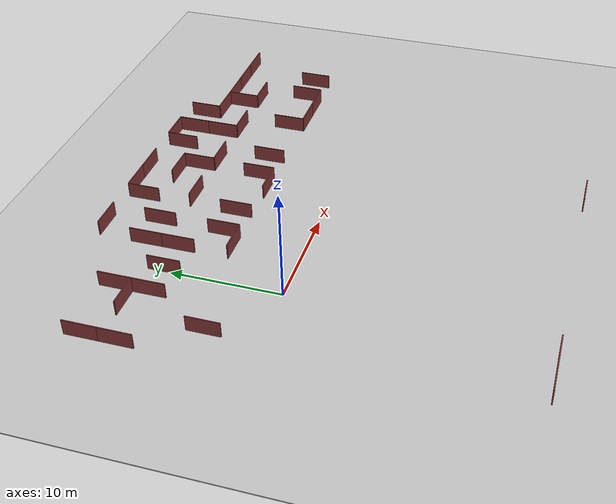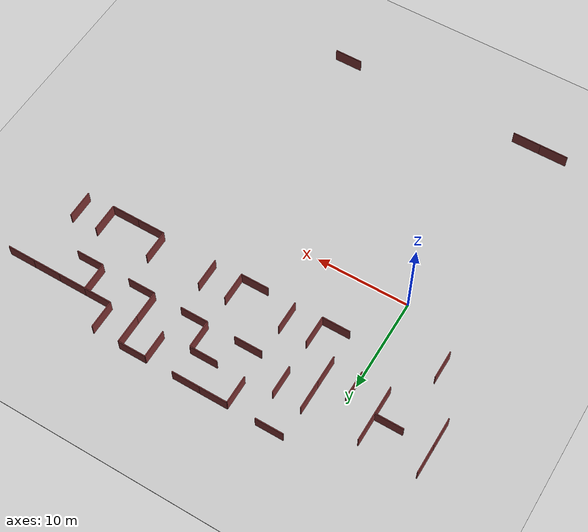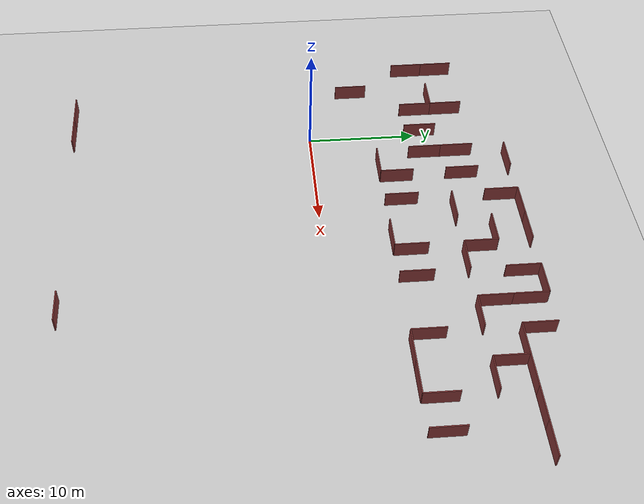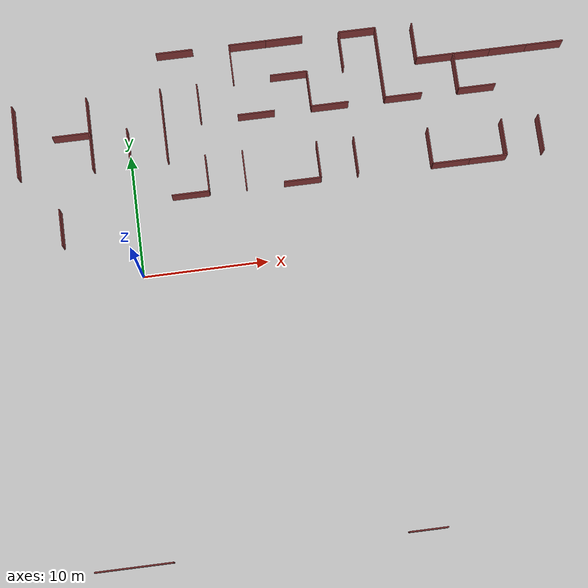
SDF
<sdf version="1.7">
 <world name="maze_world">
  <model name="ground">
   <static>true</static>
   <link name="ground_link">
    <collision name="collision"><geometry><box><size>150 150 0.1</size></box></geometry></collision>
    <visual name="visual">
     <geometry><box><size>150 150 0.1</size></box></geometry>
     <material><diffuse>0.8 0.8 0.8 1</diffuse></material>
    </visual>
   </link>
  </model>
  <model name="wall_w_69">
   <static>true</static>
   <pose>-6.0 4.5 0.75 0 0 1.5708</pose>
   <link name="link">
    <collision name="collision"><geometry><box><size>3 0.1 1.5</size></box></geometry></collision>
    <visual name="visual">
     <geometry><box><size>3 0.1 1.5</size></box></geometry>
     <material><diffuse>0.5 0.2 0.2 1</diffuse></material>
    </visual>
   </link>
  </model>
  <model name="wall_n_86">
   <static>true</static>
   <pose>4.5 6.0 0.75 0 0 0</pose>
   <link name="link">
    <collision name="collision"><geometry><box><size>3 0.1 1.5</size></box></geometry></collision>
    <visual name="visual">
     <geometry><box><size>3 0.1 1.5</size></box></geometry>
     <material><diffuse>0.5 0.2 0.2 1</diffuse></material>
    </visual>
   </link>
  </model>
  <model name="wall_w_87">
   <static>true</static>
   <pose>6.0 7.5 0.75 0 0 1.5708</pose>
   <link name="link">
    <collision name="collision"><geometry><box><size>3 0.1 1.5</size></box></geometry></collision>
    <visual name="visual">
     <geometry><box><size>3 0.1 1.5</size></box></geometry>
     <material><diffuse>0.5 0.2 0.2 1</diffuse></material>
    </visual>
   </link>
  </model>
  <model name="wall_w_88">
   <static>true</static>
   <pose>9.0 7.5 0.75 0 0 1.5708</pose>
   <link name="link">
    <collision name="collision"><geometry><box><size>3 0.1 1.5</size></box></geometry></collision>
    <visual name="visual">
     <geometry><box><size>3 0.1 1.5</size></box></geometry>
     <material><diffuse>0.5 0.2 0.2 1</diffuse></material>
    </visual>
   </link>
  </model>
  <model name="wall_n_89">
   <static>true</static>
   <pose>13.5 6.0 0.75 0 0 0</pose>
   <link name="link">
    <collision name="collision"><geometry><box><size>3 0.1 1.5</size></box></geometry></collision>
    <visual name="visual">
     <geometry><box><size>3 0.1 1.5</size></box></geometry>
     <material><diffuse>0.5 0.2 0.2 1</diffuse></material>
    </visual>
   </link>
  </model>
  <model name="wall_w_90">
   <static>true</static>
   <pose>15.0 7.5 0.75 0 0 1.5708</pose>
   <link name="link">
    <collision name="collision"><geometry><box><size>3 0.1 1.5</size></box></geometry></collision>
    <visual name="visual">
     <geometry><box><size>3 0.1 1.5</size></box></geometry>
     <material><diffuse>0.5 0.2 0.2 1</diffuse></material>
    </visual>
   </link>
  </model>
  <model name="wall_w_91">
   <static>true</static>
   <pose>18.0 7.5 0.75 0 0 1.5708</pose>
   <link name="link">
    <collision name="collision"><geometry><box><size>3 0.1 1.5</size></box></geometry></collision>
    <visual name="visual">
     <geometry><box><size>3 0.1 1.5</size></box></geometry>
     <material><diffuse>0.5 0.2 0.2 1</diffuse></material>
    </visual>
   </link>
  </model>
  <model name="wall_n_92">
   <static>true</static>
   <pose>25.5 6.0 0.75 0 0 0</pose>
   <link name="link">
    <collision name="collision"><geometry><box><size>3 0.1 1.5</size></box></geometry></collision>
    <visual name="visual">
     <geometry><box><size>3 0.1 1.5</size></box></geometry>
     <material><diffuse>0.5 0.2 0.2 1</diffuse></material>
    </visual>
   </link>
  </model>
  <model name="wall_w_93">
   <static>true</static>
   <pose>24.0 7.5 0.75 0 0 1.5708</pose>
   <link name="link">
    <collision name="collision"><geometry><box><size>3 0.1 1.5</size></box></geometry></collision>
    <visual name="visual">
     <geometry><box><size>3 0.1 1.5</size></box></geometry>
     <material><diffuse>0.5 0.2 0.2 1</diffuse></material>
    </visual>
   </link>
  </model>
  <model name="wall_n_94">
   <static>true</static>
   <pose>28.5 6.0 0.75 0 0 0</pose>
   <link name="link">
    <collision name="collision"><geometry><box><size>3 0.1 1.5</size></box></geometry></collision>
    <visual name="visual">
     <geometry><box><size>3 0.1 1.5</size></box></geometry>
     <material><diffuse>0.5 0.2 0.2 1</diffuse></material>
    </visual>
   </link>
  </model>
  <model name="wall_w_95">
   <static>true</static>
   <pose>30.0 7.5 0.75 0 0 1.5708</pose>
   <link name="link">
    <collision name="collision"><geometry><box><size>3 0.1 1.5</size></box></geometry></collision>
    <visual name="visual">
     <geometry><box><size>3 0.1 1.5</size></box></geometry>
     <material><diffuse>0.5 0.2 0.2 1</diffuse></material>
    </visual>
   </link>
  </model>
  <model name="wall_w_96">
   <static>true</static>
   <pose>33.0 7.5 0.75 0 0 1.5708</pose>
   <link name="link">
    <collision name="collision"><geometry><box><size>3 0.1 1.5</size></box></geometry></collision>
    <visual name="visual">
     <geometry><box><size>3 0.1 1.5</size></box></geometry>
     <material><diffuse>0.5 0.2 0.2 1</diffuse></material>
    </visual>
   </link>
  </model>
  <model name="wall_w_97">
   <static>true</static>
   <pose>-9.0 10.5 0.75 0 0 1.5708</pose>
   <link name="link">
    <collision name="collision"><geometry><box><size>3 0.1 1.5</size></box></geometry></collision>
    <visual name="visual">
     <geometry><box><size>3 0.1 1.5</size></box></geometry>
     <material><diffuse>0.5 0.2 0.2 1</diffuse></material>
    </visual>
   </link>
  </model>
  <model name="wall_w_98">
   <static>true</static>
   <pose>-3.0 10.5 0.75 0 0 1.5708</pose>
   <link name="link">
    <collision name="collision"><geometry><box><size>3 0.1 1.5</size></box></geometry></collision>
    <visual name="visual">
     <geometry><box><size>3 0.1 1.5</size></box></geometry>
     <material><diffuse>0.5 0.2 0.2 1</diffuse></material>
    </visual>
   </link>
  </model>
  <model name="wall_w_99">
   <static>true</static>
   <pose>0.0 10.5 0.75 0 0 1.5708</pose>
   <link name="link">
    <collision name="collision"><geometry><box><size>3 0.1 1.5</size></box></geometry></collision>
    <visual name="visual">
     <geometry><box><size>3 0.1 1.5</size></box></geometry>
     <material><diffuse>0.5 0.2 0.2 1</diffuse></material>
    </visual>
   </link>
  </model>
  <model name="wall_w_100">
   <static>true</static>
   <pose>3.0 10.5 0.75 0 0 1.5708</pose>
   <link name="link">
    <collision name="collision"><geometry><box><size>3 0.1 1.5</size></box></geometry></collision>
    <visual name="visual">
     <geometry><box><size>3 0.1 1.5</size></box></geometry>
     <material><diffuse>0.5 0.2 0.2 1</diffuse></material>
    </visual>
   </link>
  </model>
  <model name="wall_w_113">
   <static>true</static>
   <pose>-9.0 13.5 0.75 0 0 1.5708</pose>
   <link name="link">
    <collision name="collision"><geometry><box><size>3 0.1 1.5</size></box></geometry></collision>
    <visual name="visual">
     <geometry><box><size>3 0.1 1.5</size></box></geometry>
     <material><diffuse>0.5 0.2 0.2 1</diffuse></material>
    </visual>
   </link>
  </model>
  <model name="wall_n_114">
   <static>true</static>
   <pose>-4.5 12.0 0.75 0 0 0</pose>
   <link name="link">
    <collision name="collision"><geometry><box><size>3 0.1 1.5</size></box></geometry></collision>
    <visual name="visual">
     <geometry><box><size>3 0.1 1.5</size></box></geometry>
     <material><diffuse>0.5 0.2 0.2 1</diffuse></material>
    </visual>
   </link>
  </model>
  <model name="wall_w_115">
   <static>true</static>
   <pose>-3.0 13.5 0.75 0 0 1.5708</pose>
   <link name="link">
    <collision name="collision"><geometry><box><size>3 0.1 1.5</size></box></geometry></collision>
    <visual name="visual">
     <geometry><box><size>3 0.1 1.5</size></box></geometry>
     <material><diffuse>0.5 0.2 0.2 1</diffuse></material>
    </visual>
   </link>
  </model>
  <model name="wall_w_116">
   <static>true</static>
   <pose>3.0 13.5 0.75 0 0 1.5708</pose>
   <link name="link">
    <collision name="collision"><geometry><box><size>3 0.1 1.5</size></box></geometry></collision>
    <visual name="visual">
     <geometry><box><size>3 0.1 1.5</size></box></geometry>
     <material><diffuse>0.5 0.2 0.2 1</diffuse></material>
    </visual>
   </link>
  </model>
  <model name="wall_w_117">
   <static>true</static>
   <pose>6.0 13.5 0.75 0 0 1.5708</pose>
   <link name="link">
    <collision name="collision"><geometry><box><size>3 0.1 1.5</size></box></geometry></collision>
    <visual name="visual">
     <geometry><box><size>3 0.1 1.5</size></box></geometry>
     <material><diffuse>0.5 0.2 0.2 1</diffuse></material>
    </visual>
   </link>
  </model>
  <model name="wall_n_118">
   <static>true</static>
   <pose>10.5 12.0 0.75 0 0 0</pose>
   <link name="link">
    <collision name="collision"><geometry><box><size>3 0.1 1.5</size></box></geometry></collision>
    <visual name="visual">
     <geometry><box><size>3 0.1 1.5</size></box></geometry>
     <material><diffuse>0.5 0.2 0.2 1</diffuse></material>
    </visual>
   </link>
  </model>
  <model name="wall_n_119">
   <static>true</static>
   <pose>16.5 12.0 0.75 0 0 0</pose>
   <link name="link">
    <collision name="collision"><geometry><box><size>3 0.1 1.5</size></box></geometry></collision>
    <visual name="visual">
     <geometry><box><size>3 0.1 1.5</size></box></geometry>
     <material><diffuse>0.5 0.2 0.2 1</diffuse></material>
    </visual>
   </link>
  </model>
  <model name="wall_w_120">
   <static>true</static>
   <pose>15.0 13.5 0.75 0 0 1.5708</pose>
   <link name="link">
    <collision name="collision"><geometry><box><size>3 0.1 1.5</size></box></geometry></collision>
    <visual name="visual">
     <geometry><box><size>3 0.1 1.5</size></box></geometry>
     <material><diffuse>0.5 0.2 0.2 1</diffuse></material>
    </visual>
   </link>
  </model>
  <model name="wall_n_121">
   <static>true</static>
   <pose>22.5 12.0 0.75 0 0 0</pose>
   <link name="link">
    <collision name="collision"><geometry><box><size>3 0.1 1.5</size></box></geometry></collision>
    <visual name="visual">
     <geometry><box><size>3 0.1 1.5</size></box></geometry>
     <material><diffuse>0.5 0.2 0.2 1</diffuse></material>
    </visual>
   </link>
  </model>
  <model name="wall_w_122">
   <static>true</static>
   <pose>21.0 13.5 0.75 0 0 1.5708</pose>
   <link name="link">
    <collision name="collision"><geometry><box><size>3 0.1 1.5</size></box></geometry></collision>
    <visual name="visual">
     <geometry><box><size>3 0.1 1.5</size></box></geometry>
     <material><diffuse>0.5 0.2 0.2 1</diffuse></material>
    </visual>
   </link>
  </model>
  <model name="wall_n_123">
   <static>true</static>
   <pose>28.5 12.0 0.75 0 0 0</pose>
   <link name="link">
    <collision name="collision"><geometry><box><size>3 0.1 1.5</size></box></geometry></collision>
    <visual name="visual">
     <geometry><box><size>3 0.1 1.5</size></box></geometry>
     <material><diffuse>0.5 0.2 0.2 1</diffuse></material>
    </visual>
   </link>
  </model>
  <model name="wall_w_124">
   <static>true</static>
   <pose>27.0 13.5 0.75 0 0 1.5708</pose>
   <link name="link">
    <collision name="collision"><geometry><box><size>3 0.1 1.5</size></box></geometry></collision>
    <visual name="visual">
     <geometry><box><size>3 0.1 1.5</size></box></geometry>
     <material><diffuse>0.5 0.2 0.2 1</diffuse></material>
    </visual>
   </link>
  </model>
  <model name="wall_w_132">
   <static>true</static>
   <pose>9.0 16.5 0.75 0 0 1.5708</pose>
   <link name="link">
    <collision name="collision"><geometry><box><size>3 0.1 1.5</size></box></geometry></collision>
    <visual name="visual">
     <geometry><box><size>3 0.1 1.5</size></box></geometry>
     <material><diffuse>0.5 0.2 0.2 1</diffuse></material>
    </visual>
   </link>
  </model>
  <model name="wall_n_133">
   <static>true</static>
   <pose>13.5 15.0 0.75 0 0 0</pose>
   <link name="link">
    <collision name="collision"><geometry><box><size>3 0.1 1.5</size></box></geometry></collision>
    <visual name="visual">
     <geometry><box><size>3 0.1 1.5</size></box></geometry>
     <material><diffuse>0.5 0.2 0.2 1</diffuse></material>
    </visual>
   </link>
  </model>
  <model name="wall_w_134">
   <static>true</static>
   <pose>18.0 16.5 0.75 0 0 1.5708</pose>
   <link name="link">
    <collision name="collision"><geometry><box><size>3 0.1 1.5</size></box></geometry></collision>
    <visual name="visual">
     <geometry><box><size>3 0.1 1.5</size></box></geometry>
     <material><diffuse>0.5 0.2 0.2 1</diffuse></material>
    </visual>
   </link>
  </model>
  <model name="wall_w_135">
   <static>true</static>
   <pose>21.0 16.5 0.75 0 0 1.5708</pose>
   <link name="link">
    <collision name="collision"><geometry><box><size>3 0.1 1.5</size></box></geometry></collision>
    <visual name="visual">
     <geometry><box><size>3 0.1 1.5</size></box></geometry>
     <material><diffuse>0.5 0.2 0.2 1</diffuse></material>
    </visual>
   </link>
  </model>
  <model name="wall_n_136">
   <static>true</static>
   <pose>25.5 15.0 0.75 0 0 0</pose>
   <link name="link">
    <collision name="collision"><geometry><box><size>3 0.1 1.5</size></box></geometry></collision>
    <visual name="visual">
     <geometry><box><size>3 0.1 1.5</size></box></geometry>
     <material><diffuse>0.5 0.2 0.2 1</diffuse></material>
    </visual>
   </link>
  </model>
  <model name="wall_w_137">
   <static>true</static>
   <pose>24.0 16.5 0.75 0 0 1.5708</pose>
   <link name="link">
    <collision name="collision"><geometry><box><size>3 0.1 1.5</size></box></geometry></collision>
    <visual name="visual">
     <geometry><box><size>3 0.1 1.5</size></box></geometry>
     <material><diffuse>0.5 0.2 0.2 1</diffuse></material>
    </visual>
   </link>
  </model>
  <model name="wall_n_138">
   <static>true</static>
   <pose>28.5 15.0 0.75 0 0 0</pose>
   <link name="link">
    <collision name="collision"><geometry><box><size>3 0.1 1.5</size></box></geometry></collision>
    <visual name="visual">
     <geometry><box><size>3 0.1 1.5</size></box></geometry>
     <material><diffuse>0.5 0.2 0.2 1</diffuse></material>
    </visual>
   </link>
  </model>
  <model name="wall_n_139">
   <static>true</static>
   <pose>31.5 15.0 0.75 0 0 0</pose>
   <link name="link">
    <collision name="collision"><geometry><box><size>3 0.1 1.5</size></box></geometry></collision>
    <visual name="visual">
     <geometry><box><size>3 0.1 1.5</size></box></geometry>
     <material><diffuse>0.5 0.2 0.2 1</diffuse></material>
    </visual>
   </link>
  </model>
  <model name="wall_n_140">
   <static>true</static>
   <pose>34.5 15.0 0.75 0 0 0</pose>
   <link name="link">
    <collision name="collision"><geometry><box><size>3 0.1 1.5</size></box></geometry></collision>
    <visual name="visual">
     <geometry><box><size>3 0.1 1.5</size></box></geometry>
     <material><diffuse>0.5 0.2 0.2 1</diffuse></material>
    </visual>
   </link>
  </model>
  <model name="wall_n_144">
   <static>true</static>
   <pose>4.5 18.0 0.75 0 0 0</pose>
   <link name="link">
    <collision name="collision"><geometry><box><size>3 0.1 1.5</size></box></geometry></collision>
    <visual name="visual">
     <geometry><box><size>3 0.1 1.5</size></box></geometry>
     <material><diffuse>0.5 0.2 0.2 1</diffuse></material>
    </visual>
   </link>
  </model>
  <model name="wall_n_146">
   <static>true</static>
   <pose>10.5 18.0 0.75 0 0 0</pose>
   <link name="link">
    <collision name="collision"><geometry><box><size>3 0.1 1.5</size></box></geometry></collision>
    <visual name="visual">
     <geometry><box><size>3 0.1 1.5</size></box></geometry>
     <material><diffuse>0.5 0.2 0.2 1</diffuse></material>
    </visual>
   </link>
  </model>
  <model name="wall_n_147">
   <static>true</static>
   <pose>13.5 18.0 0.75 0 0 0</pose>
   <link name="link">
    <collision name="collision"><geometry><box><size>3 0.1 1.5</size></box></geometry></collision>
    <visual name="visual">
     <geometry><box><size>3 0.1 1.5</size></box></geometry>
     <material><diffuse>0.5 0.2 0.2 1</diffuse></material>
    </visual>
   </link>
  </model>
  <model name="wall_n_150">
   <static>true</static>
   <pose>19.5 18.0 0.75 0 0 0</pose>
   <link name="link">
    <collision name="collision"><geometry><box><size>3 0.1 1.5</size></box></geometry></collision>
    <visual name="visual">
     <geometry><box><size>3 0.1 1.5</size></box></geometry>
     <material><diffuse>0.5 0.2 0.2 1</diffuse></material>
    </visual>
   </link>
  </model>
  <model name="wall_bottom_1">
   <static>true</static>
   <pose>-4.5 -22.5 0.75 0 0 0</pose>
   <link name="link">
    <collision name="collision"><geometry><box><size>3 0.1 1.5</size></box></geometry></collision>
    <visual name="visual">
     <geometry><box><size>3 0.1 1.5</size></box></geometry>
     <material><diffuse>0.5 0.2 0.2 1</diffuse></material>
    </visual>
   </link>
  </model>
  <model name="wall_bottom_2">
   <static>true</static>
   <pose>-1.5 -22.5 0.75 0 0 0</pose>
   <link name="link">
    <collision name="collision"><geometry><box><size>3 0.1 1.5</size></box></geometry></collision>
    <visual name="visual">
     <geometry><box><size>3 0.1 1.5</size></box></geometry>
     <material><diffuse>0.5 0.2 0.2 1</diffuse></material>
    </visual>
   </link>
  </model>
  <model name="wall_bottom_9">
   <static>true</static>
   <pose>19.5 -22.5 0.75 0 0 0</pose>
   <link name="link">
    <collision name="collision"><geometry><box><size>3 0.1 1.5</size></box></geometry></collision>
    <visual name="visual">
     <geometry><box><size>3 0.1 1.5</size></box></geometry>
     <material><diffuse>0.5 0.2 0.2 1</diffuse></material>
    </visual>
   </link>
  </model>
 </world>
</sdf>
